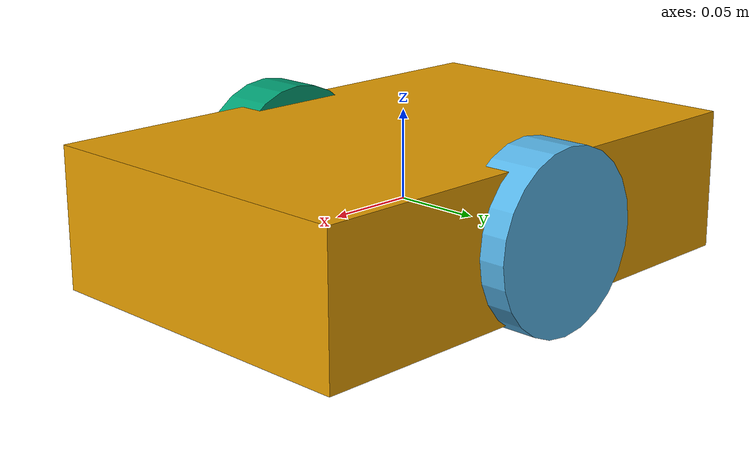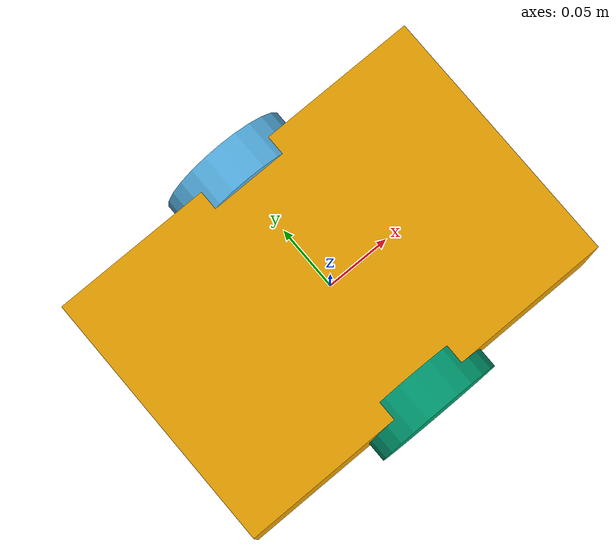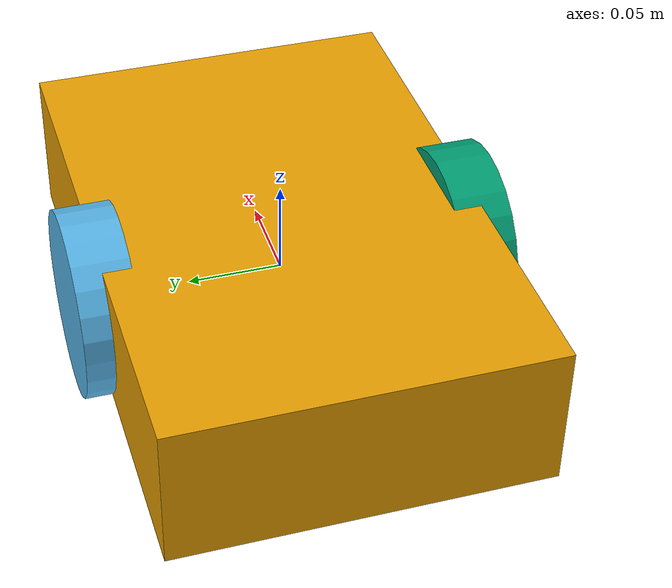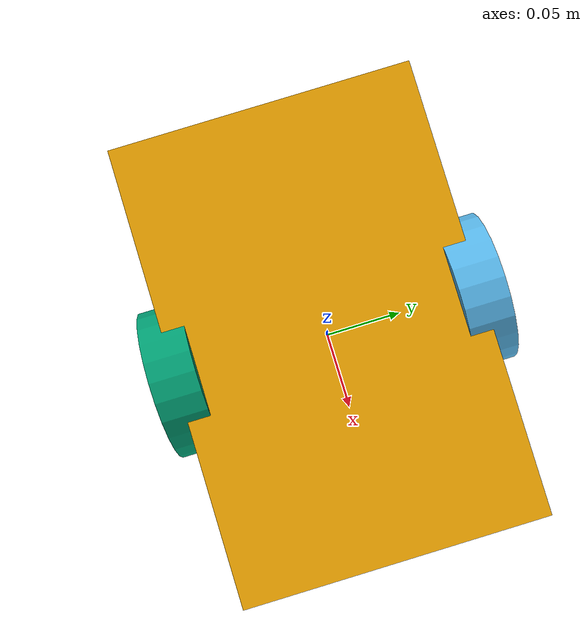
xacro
<?xml version="1.0"?>
<robot name="two_wheels" xmlns:xacro="http://www.ros.org/wiki/xacro">
  <link name="base_link">
    <visual><geometry><box size="0.3 0.2 0.08"/></geometry></visual>
  </link>

  <xacro:macro name="wheel" params="name y">
  <link name="${name}">
    <visual>
      <origin rpy="${pi / 2} 0 0"/>
      <geometry><cylinder radius="0.05" length="0.03"/></geometry>
    </visual>
  </link>
  <joint name="${name}_joint" type="continuous">
    <origin xyz="0 ${y} 0"/>
    <parent link="base_link"/>
    <child link="${name}"/>
    <axis xyz="0 1 0"/>
  </joint>
</xacro:macro>

  <xacro:wheel name="left_wheel" y="0.1"/>
  <xacro:wheel name="right_wheel" y="-0.1"/>
</robot>
